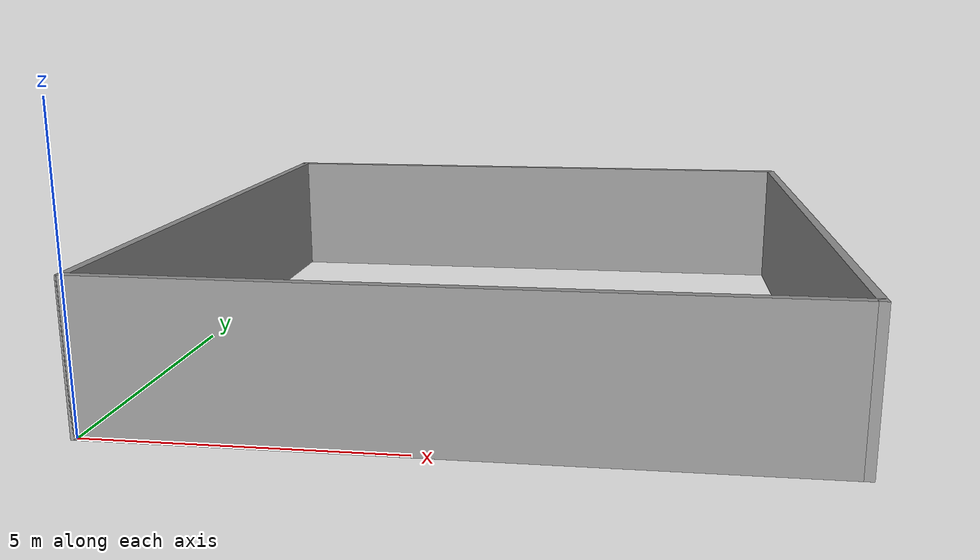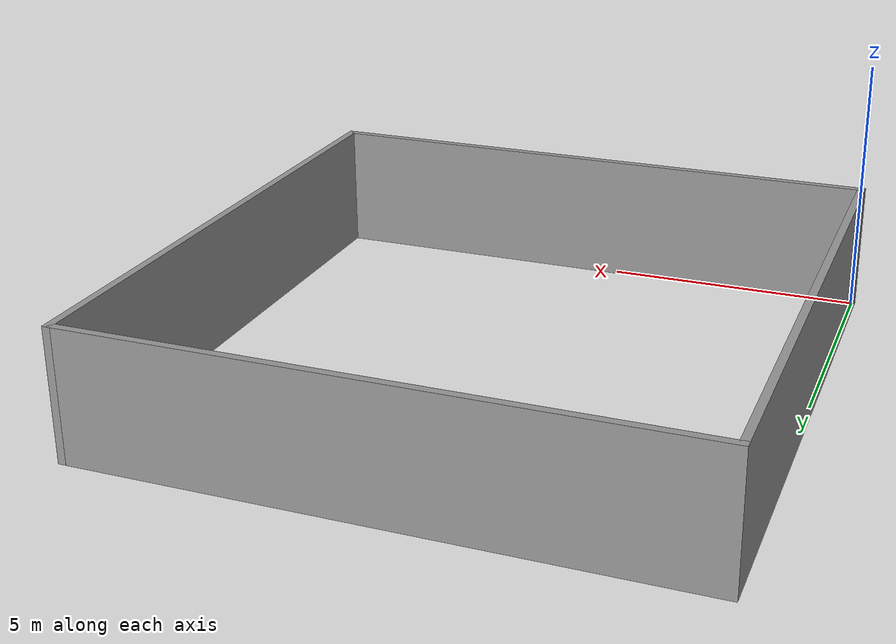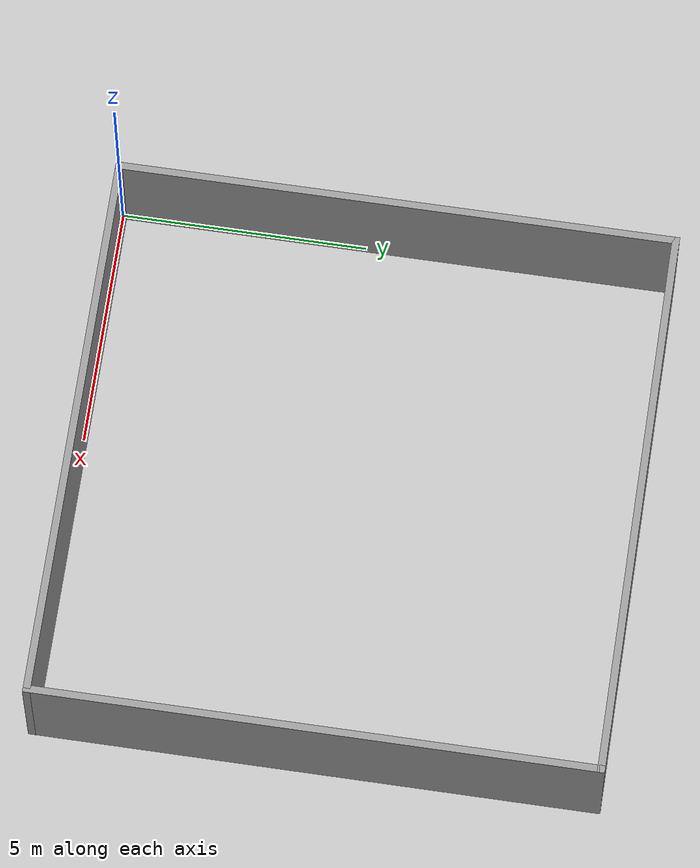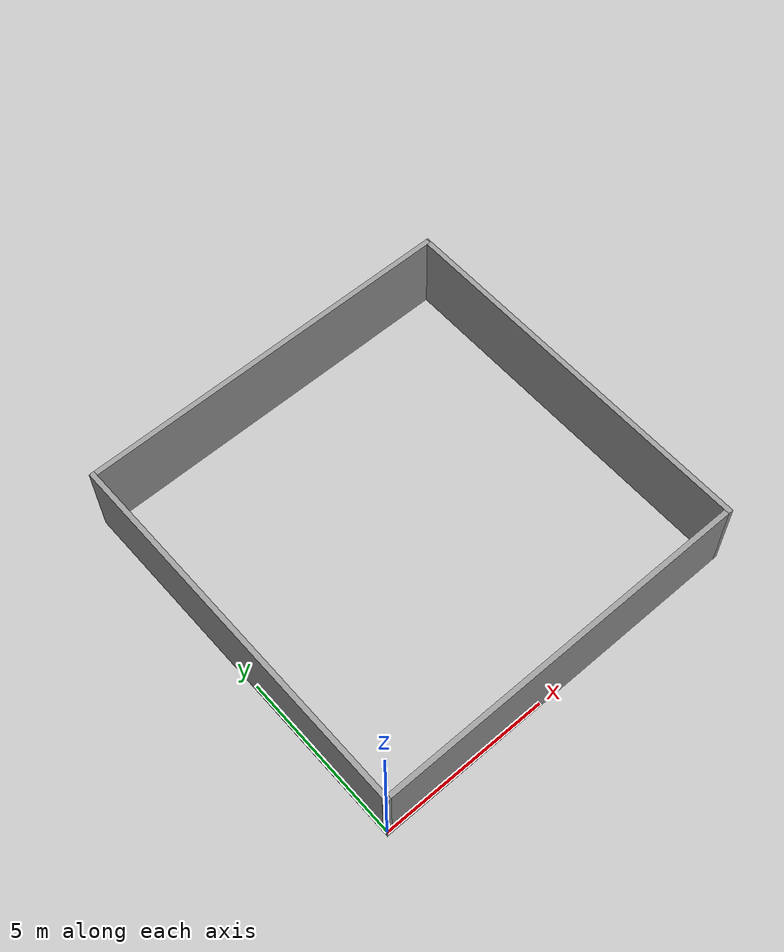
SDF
<?xml version='1.0'?>
<sdf version='1.6'>
  <model name='C205_strict'>
    <pose frame=''>5.625 5.625 0 0 -0 0</pose>
    <link name='Wall_14'>
      <collision name='Wall_14_Collision'>
        <geometry>
          <box>
            <size>11.4 0.15 2.5</size>
          </box>
        </geometry>
        <pose frame=''>0 0 1.25 0 -0 0</pose>
      </collision>
      <visual name='Wall_14_Visual'>
        <pose frame=''>0 0 1.25 0 -0 0</pose>
        <geometry>
          <box>
            <size>11.4 0.15 2.5</size>
          </box>
        </geometry>
        <material>
          <script>
            <uri>file://media/materials/scripts/gazebo.material</uri>
            <name>Gazebo/Grey</name>
          </script>
          <ambient>1 1 1 1</ambient>
        </material>
      </visual>
      <pose frame=''>5.625 0 0 0 0 -1.5708</pose>
    </link>
    <link name='Wall_16'>
      <collision name='Wall_16_Collision'>
        <geometry>
          <box>
            <size>11.4 0.15 2.5</size>
          </box>
        </geometry>
        <pose frame=''>0 0 1.25 0 -0 0</pose>
      </collision>
      <visual name='Wall_16_Visual'>
        <pose frame=''>0 0 1.25 0 -0 0</pose>
        <geometry>
          <box>
            <size>11.4 0.15 2.5</size>
          </box>
        </geometry>
        <material>
          <script>
            <uri>file://media/materials/scripts/gazebo.material</uri>
            <name>Gazebo/Grey</name>
          </script>
          <ambient>1 1 1 1</ambient>
        </material>
      </visual>
      <pose frame=''>0 5.625 0 0 -0 3.14159</pose>
    </link>
    <link name='Wall_4'>
      <collision name='Wall_4_Collision'>
        <geometry>
          <box>
            <size>11.4 0.15 2.5</size>
          </box>
        </geometry>
        <pose frame=''>0 0 1.25 0 -0 0</pose>
      </collision>
      <visual name='Wall_4_Visual'>
        <pose frame=''>0 0 1.25 0 -0 0</pose>
        <geometry>
          <box>
            <size>11.4 0.15 2.5</size>
          </box>
        </geometry>
        <material>
          <script>
            <uri>file://media/materials/scripts/gazebo.material</uri>
            <name>Gazebo/Grey</name>
          </script>
          <ambient>1 1 1 1</ambient>
        </material>
      </visual>
      <pose frame=''>-5.625 0 0 0 -0 1.5708</pose>
    </link>
    <link name='Wall_9'>
      <collision name='Wall_9_Collision'>
        <geometry>
          <box>
            <size>11.4 0.15 2.5</size>
          </box>
        </geometry>
        <pose frame=''>0 0 1.25 0 -0 0</pose>
      </collision>
      <visual name='Wall_9_Visual'>
        <pose frame=''>0 0 1.25 0 -0 0</pose>
        <geometry>
          <box>
            <size>11.4 0.15 2.5</size>
          </box>
        </geometry>
        <material>
          <script>
            <uri>file://media/materials/scripts/gazebo.material</uri>
            <name>Gazebo/Grey</name>
          </script>
          <ambient>1 1 1 1</ambient>
        </material>
      </visual>
      <pose frame=''>0 -5.625 0 0 -0 0</pose>
    </link>
    <static>1</static>
  </model>
</sdf>
